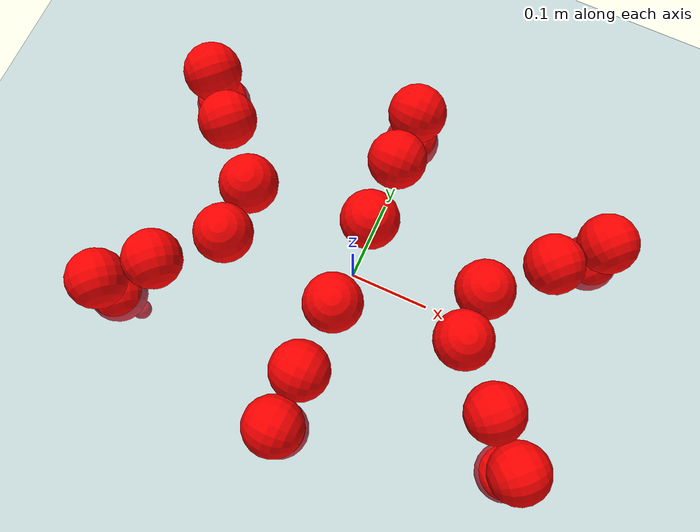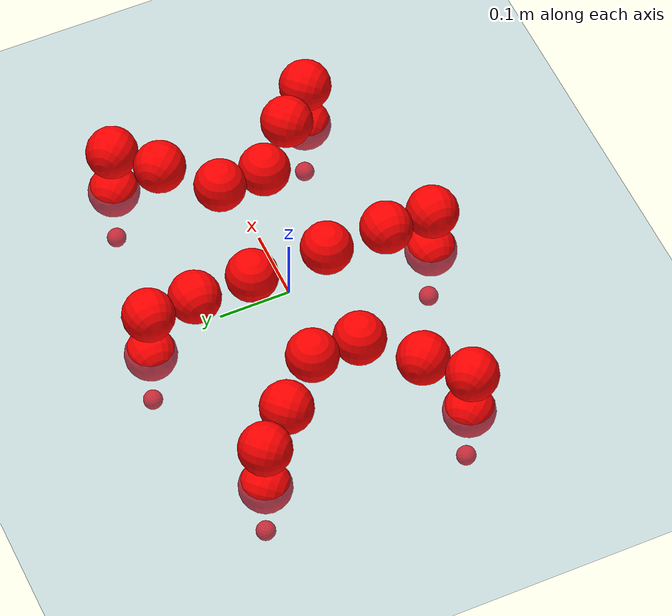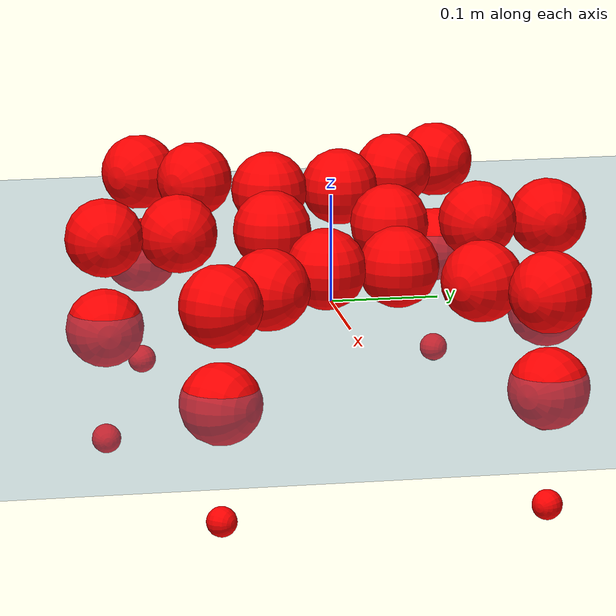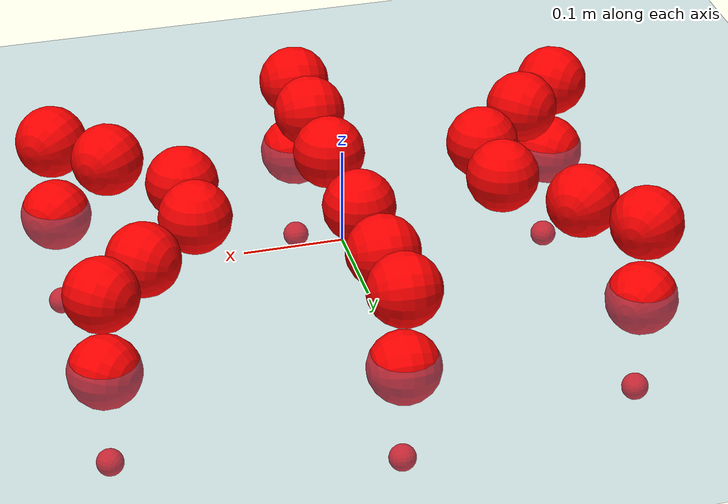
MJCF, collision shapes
<mujoco model="Golem">
  <compiler angle="radian" assetdir="assets" balanceinertia="true" inertiafromgeom="false"/>

  <option timestep="0.005" density="1.2" viscosity="2e-05"/>

  <size nkey="1"/>

  <visual>
    <quality shadowsize="8192"/>
    <map shadowclip="0.5"/>
  </visual>

  <default>
    <default class="/">
      <joint armature="0.01" damping="0.01" frictionloss="0.01"/>
      <geom contype="0" conaffinity="0" group="1" solref="-1000 -80"/>
      <site size="0.01 0.005 0.005" group="5"/>
      <general forcelimited="true" biastype="affine" gainprm="25" biasprm="0 -25 -0.5"/>
      <default class="visual">
        <geom type="mesh" group="2"/>
      </default>
      <default class="collision">
        <geom group="3"/>
      </default>
      <default class="foot">
        <geom size="0.01 0 0" condim="6" group="4" priority="1" solimp="0.015 1 0.01"/>
      </default>
      <default class="reward_collision_sphere">
        <geom group="5" rgba="1 0 0 1"/>
      </default>
    </default>
  </default>

  <asset>
    <texture type="skybox" colorspace="auto" name="//unnamed_texture_0" builtin="gradient" rgb1="0.95 0.95 0.95" rgb2="0.95 0.95 0.95" width="100" height="600"/>
    <texture type="2d" colorspace="auto" name="texplane" builtin="checker" rgb1="0.345 0.575 0.748" rgb2="0.345 0.575 0.748" markrgb="1 1 1" width="512" height="512"/>
    <material name="MatPlane" class="/" texture="texplane" texuniform="true" texrepeat="2 2" specular="0.9"/>
    <mesh name="body" class="/" file="body.stl" scale="0.001 0.001 0.001"/>
    <mesh name="coxa" class="/" file="coxa.stl" scale="0.001 0.001 0.001"/>
    <mesh name="femur" class="/" file="femur.stl" scale="0.001 0.001 0.001"/>
    <mesh name="tibia" class="/" file="tibia.stl" scale="0.001 0.001 0.001"/>
    <mesh name="tarsus" class="/" file="tarsus.stl" scale="0.001 0.001 0.001"/>
  </asset>

  <worldbody>
    <geom name="floor" class="/" size="100 100 0.125" type="plane" group="0" material="MatPlane"/>
    <light name="toplight_shadow" class="/" pos="0 0 5" dir="0.0990148 0.0990148 -0.990148" type="directional" ambient="0.04 0.04 0.04" diffuse="0.55 0.55 0.55" specular="0.12 0.12 0.12"/>
    <light name="toplight_fill" class="/" pos="0 0 5" dir="0.0990148 0.0990148 -0.990148" type="directional" castshadow="false" ambient="0.04 0.04 0.04" diffuse="0.3 0.3 0.3" specular="0.08 0.08 0.08"/>
    <body name="trunk" pos="-0.000515977 0.000488212 -0.000112016" quat="1 2.82926e-05 -2.87148e-05 -3.06572e-05">
      <inertial pos="-0.000100035 -0.000706159 -0.00217167" quat="0.999989 -0.00432177 -0.00147528 0.00117076" mass="2.76016" diaginertia="0.00929194 0.00108743 0.0156335"/>
      <joint name="//unnamed_joint_0" type="free"/>
      <geom name="//unnamed_geom_1" class="/" pos="0 0 0.0698442" quat="1 0 0 0" type="mesh" rgba="0.9 0.9 0.9 1" mesh="body"/>
      <site name="imu" class="/" pos="0.127739 0.00256447 0.104979" size="0.009033"/>
      <camera name="track" class="/" pos="0 -1.27717 0" quat="0.707107 0.707107 0 0" mode="trackcom"/>
      <camera name="ego_camera" class="/" pos="0.1274 0 0.109132" quat="-0.5 -0.5 0.5 0.5"/>
      <body name="coxa_RR" pos="-0.173718 -0.0536892 0.0715915" quat="0.382682 -2.77679e-06 7.24757e-07 -0.92388">
        <inertial pos="0.00016187 0.000961563 0.00145233" quat="0.999999 0.000119009 -0.00101509 0.000196403" mass="0.148497" diaginertia="0.00913031 0.00108684 0.0154992"/>
        <joint name="coxa_joint_RR" class="/" pos="0 0 0" axis="-0.000370533 -0.004598 -0.999989" range="-3.12422 3.14059" armature="0.0092694" damping="0" frictionloss="0.00905794"/>
        <geom name="//unnamed_geom_2" class="/" type="mesh" rgba="0.2 0.2 0.2 1" mesh="coxa"/>
        <geom name="//unnamed_geom_3" class="reward_collision_sphere" size="0.036132" pos="-0.0294 0 0"/>
        <body name="femur_RR" pos="0.0587333 0.000681406 -0.00153675" quat="0.499964 -0.499587 0.500135 0.500313">
          <inertial pos="0.000118893 8.04248e-05 0.000958238" quat="0.999999 -0.000515433 -0.000496714 -0.00112686" mass="0.14601" diaginertia="0.00910353 0.00105568 0.015234"/>
          <joint name="femur_joint_RR" class="/" pos="0 0 0" axis="0.00242717 -0.00302169 -0.999992" range="-3.13775 3.13007" armature="0.00900795" damping="0.000550346" frictionloss="0.00863914"/>
          <geom name="//unnamed_geom_4" class="/" type="mesh" rgba="0.9 0.9 0.9 1" mesh="femur"/>
          <geom name="//unnamed_geom_5" class="reward_collision_sphere" size="0.036132"/>
          <body name="tibia_RR" pos="0.0015789 -0.0679298 -0.00047748" quat="-4.51496e-05 1 -0.000123449 9.64991e-05">
            <inertial pos="0.000139506 -0.000856037 -0.000182095" quat="0.999984 0.00524962 0.000852334 -0.00170924" mass="0.147386" diaginertia="0.00910436 0.00106362 0.0155915"/>
            <joint name="tibia_joint_RR" class="/" pos="0 0 0" axis="0.00258823 -0.000653344 0.999996" range="-3.15322 3.13674" armature="0.00905196" damping="0" frictionloss="0.00933263"/>
            <geom name="//unnamed_geom_6" class="/" type="mesh" rgba="0.2 0.2 0.2 1" mesh="tibia"/>
            <geom name="//unnamed_geom_7" class="reward_collision_sphere" size="0.036132"/>
            <body name="tarsus_RR" pos="0.0830278 -0.00111313 4.73025e-06" quat="1 7.81359e-05 0.000169664 -0.000453109">
              <inertial pos="0.0586319 0.000275933 0.000593751" quat="0.502296 0.499149 0.498512 0.500034" mass="0.147047" diaginertia="0.00900663 0.00105238 0.0153674"/>
              <joint name="tarsus_joint_RR" class="/" pos="0 0 0" axis="0.000361725 -0.000946405 0.999999" range="-3.12532 3.12837" armature="0.00912005" damping="0.00856989" frictionloss="0.00896099"/>
              <geom name="//unnamed_geom_8" class="/" type="mesh" rgba="0.9 0.9 0.9 1" mesh="tarsus"/>
              <geom name="foot_1" class="foot" size="0.00856256" pos="0.10976 0 0" quat="0 -0.707107 0 0.707107"/>
              <geom name="//unnamed_geom_10" class="reward_collision_sphere" size="0.036132"/>
              <geom name="//unnamed_geom_11" class="reward_collision_sphere" size="0.0135495" pos="0.10535 0 0"/>
              <site name="foot_1" class="foot" pos="0.10976 0 0" quat="0 -0.707107 0 0.707107" size="0.009033"/>
            </body>
          </body>
        </body>
      </body>
      <body name="coxa_RM" pos="-2.09962e-05 -0.0844556 0.0701324" quat="0.707307 0.000531876 0.000334323 -0.706907">
        <inertial pos="-0.000331798 3.26912e-05 6.52359e-05" quat="1 0.000304588 -3.83565e-05 -0.00010811" mass="0.147457" diaginertia="0.00903522 0.00106154 0.015488"/>
        <joint name="coxa_joint_RM" class="/" pos="0 0 0" axis="0.00200737 0.000972273 -0.999998" range="-3.13921 3.13477" armature="0.00883102" damping="0.00685693" frictionloss="0.0087571"/>
        <geom name="//unnamed_geom_12" class="/" type="mesh" rgba="0.2 0.2 0.2 1" mesh="coxa"/>
        <geom name="//unnamed_geom_13" class="reward_collision_sphere" size="0.036132" pos="-0.0294 0 0"/>
        <body name="femur_RM" pos="0.057047 -0.00120921 -9.22383e-05" quat="0.499806 -0.500345 0.499965 0.499883">
          <inertial pos="0.00100915 0.000662263 0.000157964" quat="0.999997 0.00182495 -0.00145014 0.000600073" mass="0.146105" diaginertia="0.00889784 0.00105174 0.0151535"/>
          <joint name="femur_joint_RM" class="/" pos="0 0 0" axis="0.00301447 0.00118787 -0.999995" range="-3.13997 3.12429" armature="0.00900633" damping="0.00404907" frictionloss="0.00945763"/>
          <geom name="//unnamed_geom_14" class="/" type="mesh" rgba="0.9 0.9 0.9 1" mesh="femur"/>
          <geom name="//unnamed_geom_15" class="reward_collision_sphere" size="0.036132"/>
          <body name="tibia_RM" pos="0.00114112 -0.0680185 -0.000272249" quat="0.000312594 1 -0.000276289 5.57326e-05">
            <inertial pos="0.000969663 0.000845207 6.01724e-05" quat="0.999991 -0.000216155 0.00286101 0.00327386" mass="0.149872" diaginertia="0.00914898 0.00107689 0.0157041"/>
            <joint name="tibia_joint_RM" class="/" pos="0 0 0" axis="-0.000905574 -0.00118446 0.999999" range="-3.14592 3.12276" armature="0.00914399" damping="0.0106625" frictionloss="0.00898942"/>
            <geom name="//unnamed_geom_16" class="/" type="mesh" rgba="0.2 0.2 0.2 1" mesh="tibia"/>
            <geom name="//unnamed_geom_17" class="reward_collision_sphere" size="0.036132"/>
            <body name="tarsus_RM" pos="0.0845498 0.000260963 0.000397561" quat="1 9.14938e-06 -2.54271e-05 1.76252e-05">
              <inertial pos="0.059126 0.000509813 -7.95856e-05" quat="0.49958 0.499506 0.499535 0.501376" mass="0.15041" diaginertia="0.00903856 0.00107057 0.0158083"/>
              <joint name="tarsus_joint_RM" class="/" pos="0 0 0" axis="-0.000267097 -0.000658464 1" range="-3.13425 3.1373" armature="0.00892295" damping="0.00719607" frictionloss="0.00914703"/>
              <geom name="//unnamed_geom_18" class="/" type="mesh" rgba="0.9 0.9 0.9 1" mesh="tarsus"/>
              <geom name="foot_2" class="foot" size="0.0088208" pos="0.10976 0 0" quat="0 -0.707107 0 0.707107"/>
              <geom name="//unnamed_geom_20" class="reward_collision_sphere" size="0.036132"/>
              <geom name="//unnamed_geom_21" class="reward_collision_sphere" size="0.0135495" pos="0.10535 0 0"/>
              <site name="foot_2" class="foot" pos="0.10976 0 0" quat="0 -0.707107 0 0.707107" size="0.009033"/>
            </body>
          </body>
        </body>
      </body>
      <body name="coxa_RF" pos="0.174917 -0.0530855 0.0709793" quat="0.923843 0.000108819 -0.000221535 -0.382771">
        <inertial pos="-2.39096e-05 -0.000886852 -2.45438e-05" quat="0.999993 -0.00360948 0.000307715 -0.000196976" mass="0.148482" diaginertia="0.00917599 0.00106821 0.015599"/>
        <joint name="coxa_joint_RF" class="/" pos="0 0 0" axis="0.00192298 0.00290977 -0.999994" range="-3.11972 3.12" armature="0.00899166" damping="0.000303542" frictionloss="0.00915001"/>
        <geom name="//unnamed_geom_22" class="/" type="mesh" rgba="0.2 0.2 0.2 1" mesh="coxa"/>
        <geom name="//unnamed_geom_23" class="reward_collision_sphere" size="0.036132" pos="-0.0294 0 0"/>
        <body name="femur_RF" pos="0.0587079 0.00125456 0.000240452" quat="0.500034 -0.500019 0.49989 0.500058">
          <inertial pos="0.000578734 0.00062366 -0.000204616" quat="1 -0.000453257 -0.000368293 -0.000565506" mass="0.148311" diaginertia="0.00927737 0.00107874 0.0157693"/>
          <joint name="femur_joint_RF" class="/" pos="0 0 0" axis="0.000996964 0.000275529 -0.999999" range="-3.1392 3.15684" armature="0.0089198" damping="0.0100593" frictionloss="0.00945379"/>
          <geom name="//unnamed_geom_24" class="/" type="mesh" rgba="0.9 0.9 0.9 1" mesh="femur"/>
          <geom name="//unnamed_geom_25" class="reward_collision_sphere" size="0.036132"/>
          <body name="tibia_RF" pos="5.9882e-05 -0.0685911 -0.000626395" quat="1.86047e-06 1 -4.26097e-06 -1.96451e-06">
            <inertial pos="0.000164394 0.000333718 -0.00132049" quat="0.999999 -0.000740858 -0.000882078 0.00109091" mass="0.148155" diaginertia="0.00905316 0.00105644 0.0154997"/>
            <joint name="tibia_joint_RF" class="/" pos="0 0 0" axis="-0.00227983 -0.000772423 0.999997" range="-3.13334 3.11941" armature="0.00898536" damping="0.0102263" frictionloss="0.00861663"/>
            <geom name="//unnamed_geom_26" class="/" type="mesh" rgba="0.2 0.2 0.2 1" mesh="tibia"/>
            <geom name="//unnamed_geom_27" class="reward_collision_sphere" size="0.036132"/>
            <body name="tarsus_RF" pos="0.0860107 0.000378439 0.000164326" quat="1 -4.57028e-05 0.000112329 7.0496e-05">
              <inertial pos="0.05923 0.000425568 -9.36325e-05" quat="0.498913 0.499896 0.500973 0.500216" mass="0.145467" diaginertia="0.00896657 0.00104305 0.0150834"/>
              <joint name="tarsus_joint_RF" class="/" pos="0 0 0" axis="-0.00360491 -0.00247255 0.99999" stiffness="0.0234936" range="-3.14366 3.13965" armature="0.00917399" damping="0" frictionloss="0.00924754"/>
              <geom name="//unnamed_geom_28" class="/" type="mesh" rgba="0.9 0.9 0.9 1" mesh="tarsus"/>
              <geom name="foot_3" class="foot" size="0.00881315" pos="0.10976 0 0" quat="0 -0.707107 0 0.707107"/>
              <geom name="//unnamed_geom_30" class="reward_collision_sphere" size="0.036132"/>
              <geom name="//unnamed_geom_31" class="reward_collision_sphere" size="0.0135495" pos="0.10535 0 0"/>
              <site name="foot_3" class="foot" pos="0.10976 0 0" quat="0 -0.707107 0 0.707107" size="0.009033"/>
            </body>
          </body>
        </body>
      </body>
      <body name="coxa_LR" pos="-0.173962 0.0555443 0.0718897" quat="0.3826 0.000103459 7.98837e-05 0.923914">
        <inertial pos="0.000628973 -0.000204512 0.00207152" quat="0.999999 0.000201292 -0.00147131 0.000271248" mass="0.149176" diaginertia="0.00925283 0.00107381 0.0152976"/>
        <joint name="coxa_joint_LR" class="/" pos="0 0 0" axis="0.000561655 -2.76022e-05 -1" range="-3.12076 3.12014" armature="0.00867661" damping="0.00677127" frictionloss="0.00894083"/>
        <geom name="//unnamed_geom_32" class="/" type="mesh" rgba="0.2 0.2 0.2 1" mesh="coxa"/>
        <geom name="//unnamed_geom_33" class="reward_collision_sphere" size="0.036132" pos="-0.0294 0 0"/>
        <body name="femur_LR" pos="0.0589989 -0.00193515 -0.000573766" quat="0.499796 -0.50003 0.499931 0.500242">
          <inertial pos="0.000111153 -0.00177749 0.000436121" quat="1 -0.0001323 0.000252087 -0.000125951" mass="0.147444" diaginertia="0.0089102 0.00105257 0.0152151"/>
          <joint name="femur_joint_LR" class="/" pos="0 0 0" axis="-0.000689308 0.00186192 0.999998" range="-3.12932 3.14297" armature="0.00886903" damping="0" frictionloss="0.00903233"/>
          <geom name="//unnamed_geom_34" class="/" type="mesh" rgba="0.9 0.9 0.9 1" mesh="femur"/>
          <geom name="//unnamed_geom_35" class="reward_collision_sphere" size="0.036132"/>
          <body name="tibia_LR" pos="0.00125925 -0.0694261 -0.00309649" quat="-0.000244855 1 0.000195061 -0.000305863">
            <inertial pos="-0.00114015 0.000142736 0.000917773" quat="0.999999 0.000436584 -0.000477843 -0.00148405" mass="0.148807" diaginertia="0.00907697 0.00107737 0.0155359"/>
            <joint name="tibia_joint_LR" class="/" pos="0 0 0" axis="-0.000363206 -0.00219229 -0.999998" range="-3.15803 3.15197" armature="0.00889648" damping="8.30287e-05" frictionloss="0.00900753"/>
            <geom name="//unnamed_geom_36" class="/" type="mesh" rgba="0.2 0.2 0.2 1" mesh="tibia"/>
            <geom name="//unnamed_geom_37" class="reward_collision_sphere" size="0.036132"/>
            <body name="tarsus_LR" pos="0.0864152 0.000192466 -0.000209419" quat="1 -0.000209255 5.33314e-05 0.000186469">
              <inertial pos="0.0602278 -0.000659428 -0.000426231" quat="0.498345 0.500405 0.502995 0.498239" mass="0.14721" diaginertia="0.0089733 0.00107731 0.0154218"/>
              <joint name="tarsus_joint_LR" class="/" pos="0 0 0" axis="-0.00663387 0.00118776 -0.999977" range="-3.12096 3.15601" armature="0.00921885" damping="0" frictionloss="0.00942735"/>
              <geom name="//unnamed_geom_38" class="/" type="mesh" rgba="0.9 0.9 0.9 1" mesh="tarsus"/>
              <geom name="foot_4" class="foot" size="0.00950076" pos="0.10976 0 0" quat="0.707107 0 -0.707107 0"/>
              <geom name="//unnamed_geom_40" class="reward_collision_sphere" size="0.036132"/>
              <geom name="//unnamed_geom_41" class="reward_collision_sphere" size="0.0135495" pos="0.10535 0 0"/>
              <site name="foot_4" class="foot" pos="0.10976 0 0" quat="0.707107 0 -0.707107 0" size="0.009033"/>
            </body>
          </body>
        </body>
      </body>
      <body name="coxa_LM" pos="-0.00235227 0.0837575 0.0715087" quat="0.707074 -1.61259e-05 -6.5298e-05 0.707139">
        <inertial pos="0.000422425 0.000438081 -0.000209227" quat="0.999998 -0.00180671 0.000274209 0.000242782" mass="0.149794" diaginertia="0.00914521 0.00107698 0.015697"/>
        <joint name="coxa_joint_LM" class="/" pos="0 0 0" axis="0.00842639 0.00010022 -0.999964" range="-3.1453 3.14344" armature="0.00890583" damping="0.00893957" frictionloss="0.00865185"/>
        <geom name="//unnamed_geom_42" class="/" type="mesh" rgba="0.2 0.2 0.2 1" mesh="coxa"/>
        <geom name="//unnamed_geom_43" class="reward_collision_sphere" size="0.036132" pos="-0.0294 0 0"/>
        <body name="femur_LM" pos="0.0536781 0.00121 -0.000617271" quat="0.499751 -0.500237 0.500138 0.499874">
          <inertial pos="-0.000651553 -0.000411781 0.000134152" quat="0.999999 0.0011194 -0.000527493 -0.000978862" mass="0.145373" diaginertia="0.00893811 0.00107256 0.01548"/>
          <joint name="femur_joint_LM" class="/" pos="0 0 0" axis="-0.000550514 -0.00263481 0.999996" range="-3.14253 3.14166" armature="0.00881712" damping="0" frictionloss="0.00930437"/>
          <geom name="//unnamed_geom_44" class="/" type="mesh" rgba="0.9 0.9 0.9 1" mesh="femur"/>
          <geom name="//unnamed_geom_45" class="reward_collision_sphere" size="0.036132"/>
          <body name="tibia_LM" pos="0.000598854 -0.0666822 0.00201528" quat="8.59848e-05 1 -7.89789e-05 -2.46783e-05">
            <inertial pos="-0.000948586 -0.000980298 -0.000295767" quat="0.999996 0.00230041 0.00108159 -0.0010696" mass="0.146841" diaginertia="0.00901563 0.00107159 0.0153873"/>
            <joint name="tibia_joint_LM" class="/" pos="0 0 0" axis="0.00291016 -0.000434825 -0.999996" range="-3.14224 3.13868" armature="0.00896239" damping="0.00240581" frictionloss="0.009062"/>
            <geom name="//unnamed_geom_46" class="/" type="mesh" rgba="0.2 0.2 0.2 1" mesh="tibia"/>
            <geom name="//unnamed_geom_47" class="reward_collision_sphere" size="0.036132"/>
            <body name="tarsus_LM" pos="0.087317 -0.000436834 -0.00107591" quat="1 -6.03513e-05 -9.56183e-05 3.76813e-05">
              <inertial pos="0.0587218 0.00126647 -0.000996574" quat="0.49842 0.500597 0.50219 0.498784" mass="0.147606" diaginertia="0.00916815 0.00106736 0.0154175"/>
              <joint name="tarsus_joint_LM" class="/" pos="0 0 0" axis="-0.00307861 -0.0022002 -0.999993" range="-3.13407 3.13796" armature="0.00910172" damping="0.0042773" frictionloss="0.00926871"/>
              <geom name="//unnamed_geom_48" class="/" type="mesh" rgba="0.9 0.9 0.9 1" mesh="tarsus"/>
              <geom name="foot_5" class="foot" size="0.00910624" pos="0.10976 0 0" quat="0.707107 0 -0.707107 0"/>
              <geom name="//unnamed_geom_50" class="reward_collision_sphere" size="0.036132"/>
              <geom name="//unnamed_geom_51" class="reward_collision_sphere" size="0.0135495" pos="0.10535 0 0"/>
              <site name="foot_5" class="foot" pos="0.10976 0 0" quat="0.707107 0 -0.707107 0" size="0.009033"/>
            </body>
          </body>
        </body>
      </body>
      <body name="coxa_LF" pos="0.175036 0.0531036 0.0702613" quat="0.92395 0.000181367 2.50933e-05 0.382514">
        <inertial pos="0.000508265 -1.45463e-05 0.000431399" quat="0.999998 -0.000669976 0.00164448 0.000516924" mass="0.149438" diaginertia="0.00900572 0.00107492 0.0156765"/>
        <joint name="coxa_joint_LF" class="/" pos="0 0 0" axis="-0.000912377 0.00493432 -0.999987" range="-3.14918 3.14096" armature="0.00906287" damping="0.00761935" frictionloss="0.00971081"/>
        <geom name="//unnamed_geom_52" class="/" type="mesh" rgba="0.2 0.2 0.2 1" mesh="coxa"/>
        <geom name="//unnamed_geom_53" class="reward_collision_sphere" size="0.036132" pos="-0.0294 0 0"/>
        <body name="femur_LF" pos="0.0584597 -0.000163428 3.58629e-05" quat="0.500008 -0.49996 0.500082 0.49995">
          <inertial pos="-0.00140297 4.87412e-05 0.00149846" quat="1 -1.5942e-06 -3.24567e-06 -9.21378e-06" mass="0.148565" diaginertia="0.00908074 0.00106336 0.0154551"/>
          <joint name="femur_joint_LF" class="/" pos="0 0 0" axis="0.000135502 -0.000446942 1" stiffness="0.000520101" range="-3.14579 3.1432" armature="0.00866181" damping="0.00103939" frictionloss="0.00911209"/>
          <geom name="//unnamed_geom_54" class="/" type="mesh" rgba="0.9 0.9 0.9 1" mesh="femur"/>
          <geom name="//unnamed_geom_55" class="reward_collision_sphere" size="0.036132"/>
          <body name="tibia_LF" pos="-0.000273389 -0.0692359 0.000687678" quat="-0.000444715 1 -0.000247474 -0.000144805">
            <inertial pos="0.000755747 -0.00140028 -0.000608232" quat="1 6.08319e-06 -0.000348851 -0.000100828" mass="0.143204" diaginertia="0.00873083 0.00104106 0.0150911"/>
            <joint name="tibia_joint_LF" class="/" pos="0 0 0" axis="0.00184693 -0.00155419 -0.999997" stiffness="0.000996803" range="-3.13853 3.14708" armature="0.00873704" damping="0" frictionloss="0.00893285"/>
            <geom name="//unnamed_geom_56" class="/" type="mesh" rgba="0.2 0.2 0.2 1" mesh="tibia"/>
            <geom name="//unnamed_geom_57" class="reward_collision_sphere" size="0.036132"/>
            <body name="tarsus_LF" pos="0.0857512 0.000502761 0.000772938" quat="1 8.0147e-05 -0.000117703 -0.00018079">
              <inertial pos="0.0593126 -0.000581393 -0.000518308" quat="0.498101 0.502994 0.498628 0.500261" mass="0.14534" diaginertia="0.00880749 0.00104467 0.0150514"/>
              <joint name="tarsus_joint_LF" class="/" pos="0 0 0" axis="0.00224293 0.00445595 -0.999988" range="-3.13164 3.13983" armature="0.00894521" damping="0.0154345" frictionloss="0.00847601"/>
              <geom name="//unnamed_geom_58" class="/" type="mesh" rgba="0.9 0.9 0.9 1" mesh="tarsus"/>
              <geom name="foot_6" class="foot" size="0.00878982" pos="0.10976 0 0" quat="0.707107 0 -0.707107 0"/>
              <geom name="//unnamed_geom_60" class="reward_collision_sphere" size="0.036132"/>
              <geom name="//unnamed_geom_61" class="reward_collision_sphere" size="0.0135495" pos="0.10535 0 0"/>
              <site name="foot_6" class="foot" pos="0.10976 0 0" quat="0.707107 0 -0.707107 0" size="0.009033"/>
            </body>
          </body>
        </body>
      </body>
    </body>
  </worldbody>

  <contact>
    <pair class="/" geom1="floor" geom2="foot_1" name="//unnamed_contact_0"/>
    <pair class="/" geom1="floor" geom2="foot_2" name="//unnamed_contact_1"/>
    <pair class="/" geom1="floor" geom2="foot_3" name="//unnamed_contact_2"/>
    <pair class="/" geom1="floor" geom2="foot_4" name="//unnamed_contact_3"/>
    <pair class="/" geom1="floor" geom2="foot_5" name="//unnamed_contact_4"/>
    <pair class="/" geom1="floor" geom2="foot_6" name="//unnamed_contact_5"/>
  </contact>

  <actuator>
    <general name="coxa_joint_RR" class="/" joint="coxa_joint_RR" forcerange="-6.73162 6.73162" gainprm="21.6318" biasprm="0 -21.6318 -0.480704"/>
    <general name="femur_joint_RR" class="/" joint="femur_joint_RR" forcerange="-6.54604 6.54604" gainprm="21.6318" biasprm="0 -21.6318 -0.480704"/>
    <general name="tibia_joint_RR" class="/" joint="tibia_joint_RR" forcerange="-6.63481 6.63481" gainprm="21.6318" biasprm="0 -21.6318 -0.480704"/>
    <general name="tarsus_joint_RR" class="/" joint="tarsus_joint_RR" forcerange="-6.69496 6.69496" gainprm="21.6318" biasprm="0 -21.6318 -0.480704"/>
    <general name="coxa_joint_RM" class="/" joint="coxa_joint_RM" forcerange="-6.66206 6.66206" gainprm="21.6318" biasprm="0 -21.6318 -0.480704"/>
    <general name="femur_joint_RM" class="/" joint="femur_joint_RM" forcerange="-6.5961 6.5961" gainprm="21.6318" biasprm="0 -21.6318 -0.480704"/>
    <general name="tibia_joint_RM" class="/" joint="tibia_joint_RM" forcerange="-6.64825 6.64825" gainprm="21.6318" biasprm="0 -21.6318 -0.480704"/>
    <general name="tarsus_joint_RM" class="/" joint="tarsus_joint_RM" forcerange="-6.86075 6.86075" gainprm="21.6318" biasprm="0 -21.6318 -0.480704"/>
    <general name="coxa_joint_RF" class="/" joint="coxa_joint_RF" forcerange="-6.36171 6.36171" gainprm="21.6318" biasprm="0 -21.6318 -0.480704"/>
    <general name="femur_joint_RF" class="/" joint="femur_joint_RF" forcerange="-6.38584 6.38584" gainprm="21.6318" biasprm="0 -21.6318 -0.480704"/>
    <general name="tibia_joint_RF" class="/" joint="tibia_joint_RF" forcerange="-6.41004 6.41004" gainprm="21.6318" biasprm="0 -21.6318 -0.480704"/>
    <general name="tarsus_joint_RF" class="/" joint="tarsus_joint_RF" forcerange="-6.74154 6.74154" gainprm="21.6318" biasprm="0 -21.6318 -0.480704"/>
    <general name="coxa_joint_LR" class="/" joint="coxa_joint_LR" forcerange="-6.8123 6.8123" gainprm="21.6318" biasprm="0 -21.6318 -0.480704"/>
    <general name="femur_joint_LR" class="/" joint="femur_joint_LR" forcerange="-6.51695 6.51695" gainprm="21.6318" biasprm="0 -21.6318 -0.480704"/>
    <general name="tibia_joint_LR" class="/" joint="tibia_joint_LR" forcerange="-6.59011 6.59011" gainprm="21.6318" biasprm="0 -21.6318 -0.480704"/>
    <general name="tarsus_joint_LR" class="/" joint="tarsus_joint_LR" forcerange="-6.81013 6.81013" gainprm="21.6318" biasprm="0 -21.6318 -0.480704"/>
    <general name="coxa_joint_LM" class="/" joint="coxa_joint_LM" forcerange="-6.47196 6.47196" gainprm="21.6318" biasprm="0 -21.6318 -0.480704"/>
    <general name="femur_joint_LM" class="/" joint="femur_joint_LM" forcerange="-6.78276 6.78276" gainprm="21.6318" biasprm="0 -21.6318 -0.480704"/>
    <general name="tibia_joint_LM" class="/" joint="tibia_joint_LM" forcerange="-6.76183 6.76183" gainprm="21.6318" biasprm="0 -21.6318 -0.480704"/>
    <general name="tarsus_joint_LM" class="/" joint="tarsus_joint_LM" forcerange="-6.49551 6.49551" gainprm="21.6318" biasprm="0 -21.6318 -0.480704"/>
    <general name="coxa_joint_LF" class="/" joint="coxa_joint_LF" forcerange="-6.51279 6.51279" gainprm="21.6318" biasprm="0 -21.6318 -0.480704"/>
    <general name="femur_joint_LF" class="/" joint="femur_joint_LF" forcerange="-6.80983 6.80983" gainprm="21.6318" biasprm="0 -21.6318 -0.480704"/>
    <general name="tibia_joint_LF" class="/" joint="tibia_joint_LF" forcerange="-6.37663 6.37663" gainprm="21.6318" biasprm="0 -21.6318 -0.480704"/>
    <general name="tarsus_joint_LF" class="/" joint="tarsus_joint_LF" forcerange="-6.72974 6.72974" gainprm="21.6318" biasprm="0 -21.6318 -0.480704"/>
  </actuator>

  <sensor>
    <gyro site="imu" name="imu_angular_velocity"/>
    <velocimeter site="imu" name="imu_linear_velocity"/>
    <framelinvel objtype="site" objname="foot_1" name="foot_1_global_linear_velocity"/>
    <framelinvel objtype="site" objname="foot_2" name="foot_2_global_linear_velocity"/>
    <framelinvel objtype="site" objname="foot_3" name="foot_3_global_linear_velocity"/>
    <framelinvel objtype="site" objname="foot_4" name="foot_4_global_linear_velocity"/>
    <framelinvel objtype="site" objname="foot_5" name="foot_5_global_linear_velocity"/>
    <framelinvel objtype="site" objname="foot_6" name="foot_6_global_linear_velocity"/>
  </sensor>

  <keyframe>
    <key name="home" qpos="0 0 0.1457 1 0 0 0 0 0 0 0 0 0 0 0 0 0 0 0 0 0 0 0 0 0 0 0 0 0 0 0"/>
  </keyframe>
</mujoco>
